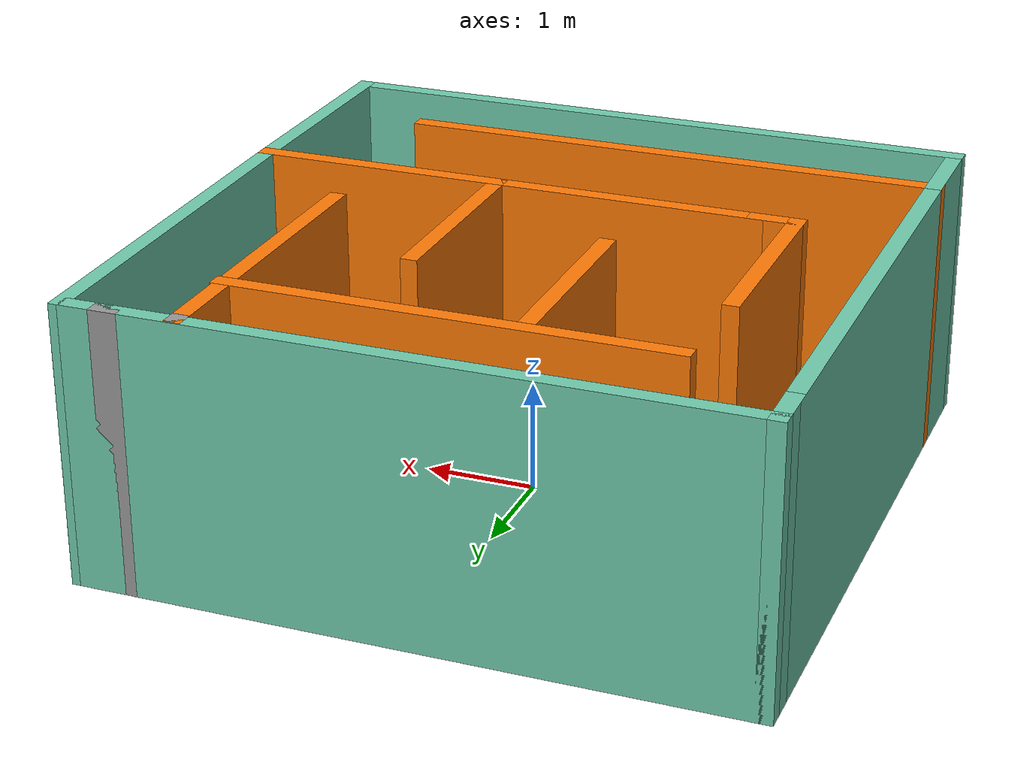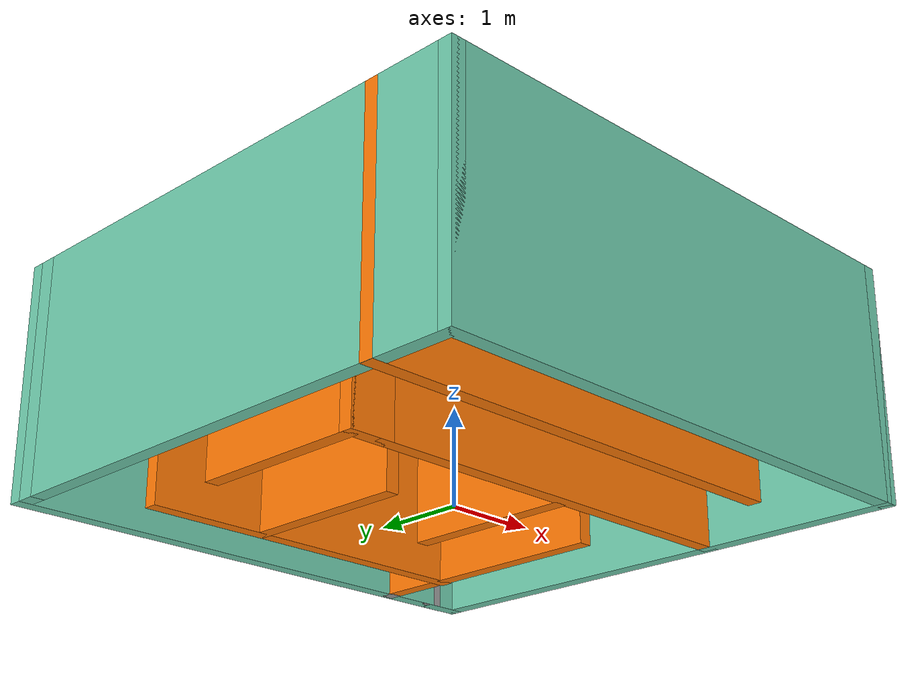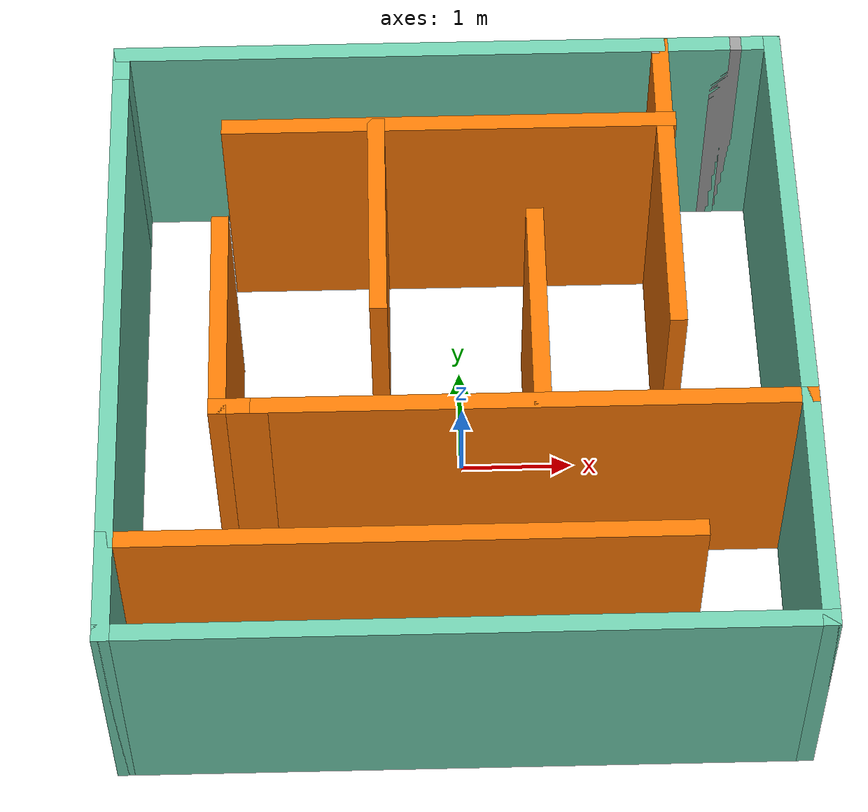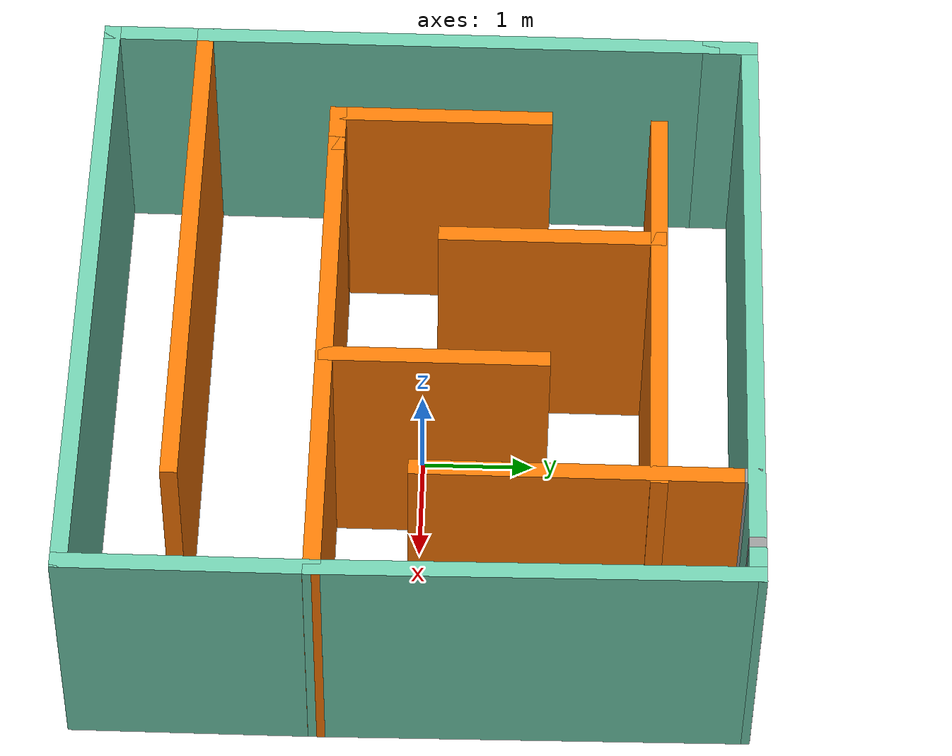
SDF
<?xml version='1.0'?>
<sdf version='1.7'>
  <model name='simple_map'>
    <pose>-0.034497 -0.029497 0 0 -0 0</pose>
    <link name='Wall_0'>
      <collision name='Wall_0_Collision'>
        <geometry>
          <box>
            <size>5 0.15 2.5</size>
          </box>
        </geometry>
        <pose>0 0 1.25 0 -0 0</pose>
      </collision>
      <visual name='Wall_0_Visual'>
        <pose>0 0 1.25 0 -0 0</pose>
        <geometry>
          <box>
            <size>5 0.15 2.5</size>
          </box>
        </geometry>
        <material>
          <script>
            <uri>file://media/materials/scripts/gazebo.material</uri>
            <name>Gazebo/Grey</name>
          </script>
          <ambient>0.996078 0.47451 0.0196078 1</ambient>
        </material>
        <meta>
          <layer>0</layer>
        </meta>
      </visual>
      <pose>-0.500503 -2.0505 0 0 -0 3.14159</pose>
    </link>
    <link name='Wall_10'>
      <collision name='Wall_10_Collision'>
        <geometry>
          <box>
            <size>0.5 0.15 2.5</size>
          </box>
        </geometry>
        <pose>0 0 1.25 0 -0 0</pose>
      </collision>
      <visual name='Wall_10_Visual'>
        <pose>0 0 1.25 0 -0 0</pose>
        <geometry>
          <box>
            <size>0.5 0.15 2.5</size>
          </box>
        </geometry>
        <material>
          <script>
            <uri>file://media/materials/scripts/gazebo.material</uri>
            <name>Gazebo/Grey</name>
          </script>
          <ambient>0.435294 0.796078 0.67451 1</ambient>
        </material>
        <meta>
          <layer>0</layer>
        </meta>
      </visual>
      <pose>-2.9255 2.7245 0 0 -0 1.5708</pose>
    </link>
    <link name='Wall_11'>
      <collision name='Wall_11_Collision'>
        <geometry>
          <box>
            <size>5.5 0.15 2.5</size>
          </box>
        </geometry>
        <pose>0 0 1.25 0 -0 0</pose>
      </collision>
      <visual name='Wall_11_Visual'>
        <pose>0 0 1.25 0 -0 0</pose>
        <geometry>
          <box>
            <size>5.5 0.15 2.5</size>
          </box>
        </geometry>
        <material>
          <script>
            <uri>file://media/materials/scripts/gazebo.material</uri>
            <name>Gazebo/Grey</name>
          </script>
          <ambient>0.435294 0.796078 0.67451 1</ambient>
        </material>
        <meta>
          <layer>0</layer>
        </meta>
      </visual>
      <pose>-0.250503 2.8995 0 0 -0 0</pose>
    </link>
    <link name='Wall_12'>
      <collision name='Wall_12_Collision'>
        <geometry>
          <box>
            <size>0.25 0.15 2.5</size>
          </box>
        </geometry>
        <pose>0 0 1.25 0 -0 0</pose>
      </collision>
      <visual name='Wall_12_Visual'>
        <pose>0 0 1.25 0 -0 0</pose>
        <geometry>
          <box>
            <size>0.25 0.15 2.5</size>
          </box>
        </geometry>
        <material>
          <script>
            <uri>file://media/materials/scripts/gazebo.material</uri>
            <name>Gazebo/Grey</name>
          </script>
          <ambient>1 1 1 1</ambient>
        </material>
        <meta>
          <layer>0</layer>
        </meta>
      </visual>
      <pose>2.4745 2.8995 0 0 -0 0</pose>
    </link>
    <link name='Wall_13'>
      <collision name='Wall_13_Collision'>
        <geometry>
          <box>
            <size>0.5 0.15 2.5</size>
          </box>
        </geometry>
        <pose>0 0 1.25 0 -0 0</pose>
      </collision>
      <visual name='Wall_13_Visual'>
        <pose>0 0 1.25 0 -0 0</pose>
        <geometry>
          <box>
            <size>0.5 0.15 2.5</size>
          </box>
        </geometry>
        <material>
          <script>
            <uri>file://media/materials/scripts/gazebo.material</uri>
            <name>Gazebo/Grey</name>
          </script>
          <ambient>0.435294 0.796078 0.67451 1</ambient>
        </material>
        <meta>
          <layer>0</layer>
        </meta>
      </visual>
      <pose>2.6995 2.8995 0 0 -0 0</pose>
    </link>
    <link name='Wall_14'>
      <collision name='Wall_14_Collision'>
        <geometry>
          <box>
            <size>3.85034 0.15 2.5</size>
          </box>
        </geometry>
        <pose>0 0 1.25 0 -0 0</pose>
      </collision>
      <visual name='Wall_14_Visual'>
        <pose>0 0 1.25 0 -0 0</pose>
        <geometry>
          <box>
            <size>3.85034 0.15 2.5</size>
          </box>
        </geometry>
        <material>
          <script>
            <uri>file://media/materials/scripts/gazebo.material</uri>
            <name>Gazebo/Grey</name>
          </script>
          <ambient>0.435294 0.796078 0.67451 1</ambient>
        </material>
        <meta>
          <layer>0</layer>
        </meta>
      </visual>
      <pose>2.8995 1.0495 0 0 -0 -1.55728</pose>
    </link>
    <link name='Wall_16'>
      <collision name='Wall_16_Collision'>
        <geometry>
          <box>
            <size>3 0.15 2.5</size>
          </box>
        </geometry>
        <pose>0 0 1.25 0 -0 0</pose>
      </collision>
      <visual name='Wall_16_Visual'>
        <pose>0 0 1.25 0 -0 0</pose>
        <geometry>
          <box>
            <size>3 0.15 2.5</size>
          </box>
        </geometry>
        <material>
          <script>
            <uri>file://media/materials/scripts/gazebo.material</uri>
            <name>Gazebo/Grey</name>
          </script>
          <ambient>0.996078 0.47451 0.0196078 1</ambient>
        </material>
        <meta>
          <layer>0</layer>
        </meta>
      </visual>
      <pose>1.87037 1.46337 0 0 -0 1.5708</pose>
    </link>
    <link name='Wall_17'>
      <collision name='Wall_17_Collision'>
        <geometry>
          <box>
            <size>0.15 0.15 2.5</size>
          </box>
        </geometry>
        <pose>0 0 1.25 0 -0 0</pose>
      </collision>
      <visual name='Wall_17_Visual'>
        <pose>0 0 1.25 0 -0 0</pose>
        <geometry>
          <box>
            <size>0.15 0.15 2.5</size>
          </box>
        </geometry>
        <material>
          <script>
            <uri>file://media/materials/scripts/gazebo.material</uri>
            <name>Gazebo/Grey</name>
          </script>
          <ambient>1 1 1 1</ambient>
        </material>
        <meta>
          <layer>0</layer>
        </meta>
      </visual>
      <pose>1.87037 2.87515 0 0 -0 0</pose>
    </link>
    <link name='Wall_19'>
      <collision name='Wall_19_Collision'>
        <geometry>
          <box>
            <size>4 0.15 2.5</size>
          </box>
        </geometry>
        <pose>0 0 1.25 0 -0 0</pose>
      </collision>
      <visual name='Wall_19_Visual'>
        <pose>0 0 1.25 0 -0 0</pose>
        <geometry>
          <box>
            <size>4 0.15 2.5</size>
          </box>
        </geometry>
        <material>
          <script>
            <uri>file://media/materials/scripts/gazebo.material</uri>
            <name>Gazebo/Grey</name>
          </script>
          <ambient>0.996078 0.47451 0.0196078 1</ambient>
        </material>
        <meta>
          <layer>0</layer>
        </meta>
      </visual>
      <pose>-0.02956 2.07926 0 0 -0 0</pose>
    </link>
    <link name='Wall_2'>
      <collision name='Wall_2_Collision'>
        <geometry>
          <box>
            <size>1 0.15 2.5</size>
          </box>
        </geometry>
        <pose>0 0 1.25 0 -0 0</pose>
      </collision>
      <visual name='Wall_2_Visual'>
        <pose>0 0 1.25 0 -0 0</pose>
        <geometry>
          <box>
            <size>1 0.15 2.5</size>
          </box>
        </geometry>
        <material>
          <script>
            <uri>file://media/materials/scripts/gazebo.material</uri>
            <name>Gazebo/Grey</name>
          </script>
          <ambient>0.435294 0.796078 0.67451 1</ambient>
        </material>
        <meta>
          <layer>0</layer>
        </meta>
      </visual>
      <pose>-2.9255 -2.4755 0 0 -0 -1.5708</pose>
    </link>
    <link name='Wall_21'>
      <collision name='Wall_21_Collision'>
        <geometry>
          <box>
            <size>2 0.15 2.5</size>
          </box>
        </geometry>
        <pose>0 0 1.25 0 -0 0</pose>
      </collision>
      <visual name='Wall_21_Visual'>
        <pose>0 0 1.25 0 -0 0</pose>
        <geometry>
          <box>
            <size>2 0.15 2.5</size>
          </box>
        </geometry>
        <material>
          <script>
            <uri>file://media/materials/scripts/gazebo.material</uri>
            <name>Gazebo/Grey</name>
          </script>
          <ambient>0.996078 0.47451 0.0196078 1</ambient>
        </material>
        <meta>
          <layer>0</layer>
        </meta>
      </visual>
      <pose>0.69044 0.14766 0 0 -0 1.5708</pose>
    </link>
    <link name='Wall_23'>
      <collision name='Wall_23_Collision'>
        <geometry>
          <box>
            <size>2 0.15 2.5</size>
          </box>
        </geometry>
        <pose>0 0 1.25 0 -0 0</pose>
      </collision>
      <visual name='Wall_23_Visual'>
        <pose>0 0 1.25 0 -0 0</pose>
        <geometry>
          <box>
            <size>2 0.15 2.5</size>
          </box>
        </geometry>
        <material>
          <script>
            <uri>file://media/materials/scripts/gazebo.material</uri>
            <name>Gazebo/Grey</name>
          </script>
          <ambient>0.996078 0.47451 0.0196078 1</ambient>
        </material>
        <meta>
          <layer>0</layer>
        </meta>
      </visual>
      <pose>-0.671735 1.14104 0 0 -0 -1.5708</pose>
    </link>
    <link name='Wall_3'>
      <collision name='Wall_3_Collision'>
        <geometry>
          <box>
            <size>6 0.15 2.5</size>
          </box>
        </geometry>
        <pose>0 0 1.25 0 -0 0</pose>
      </collision>
      <visual name='Wall_3_Visual'>
        <pose>0 0 1.25 0 -0 0</pose>
        <geometry>
          <box>
            <size>6 0.15 2.5</size>
          </box>
        </geometry>
        <material>
          <script>
            <uri>file://media/materials/scripts/gazebo.material</uri>
            <name>Gazebo/Grey</name>
          </script>
          <ambient>0.435294 0.796078 0.67451 1</ambient>
        </material>
        <meta>
          <layer>0</layer>
        </meta>
      </visual>
      <pose>-0.000503 -2.9005 0 0 -0 0</pose>
    </link>
    <link name='Wall_4'>
      <collision name='Wall_4_Collision'>
        <geometry>
          <box>
            <size>2.25 0.15 2.5</size>
          </box>
        </geometry>
        <pose>0 0 1.25 0 -0 0</pose>
      </collision>
      <visual name='Wall_4_Visual'>
        <pose>0 0 1.25 0 -0 0</pose>
        <geometry>
          <box>
            <size>2.25 0.15 2.5</size>
          </box>
        </geometry>
        <material>
          <script>
            <uri>file://media/materials/scripts/gazebo.material</uri>
            <name>Gazebo/Grey</name>
          </script>
          <ambient>0.435294 0.796078 0.67451 1</ambient>
        </material>
        <meta>
          <layer>0</layer>
        </meta>
      </visual>
      <pose>2.9245 -1.8505 0 0 -0 1.5708</pose>
    </link>
    <link name='Wall_5'>
      <collision name='Wall_5_Collision'>
        <geometry>
          <box>
            <size>4.75 0.15 2.5</size>
          </box>
        </geometry>
        <pose>0 0 1.25 0 -0 0</pose>
      </collision>
      <visual name='Wall_5_Visual'>
        <pose>0 0 1.25 0 -0 0</pose>
        <geometry>
          <box>
            <size>4.75 0.15 2.5</size>
          </box>
        </geometry>
        <material>
          <script>
            <uri>file://media/materials/scripts/gazebo.material</uri>
            <name>Gazebo/Grey</name>
          </script>
          <ambient>0.996078 0.47451 0.0196078 1</ambient>
        </material>
        <meta>
          <layer>0</layer>
        </meta>
      </visual>
      <pose>0.624497 -0.800503 0 0 -0 3.14159</pose>
    </link>
    <link name='Wall_6'>
      <collision name='Wall_6_Collision'>
        <geometry>
          <box>
            <size>0.5 0.15 2.5</size>
          </box>
        </geometry>
        <pose>0 0 1.25 0 -0 0</pose>
      </collision>
      <visual name='Wall_6_Visual'>
        <pose>0 0 1.25 0 -0 0</pose>
        <geometry>
          <box>
            <size>0.5 0.15 2.5</size>
          </box>
        </geometry>
        <material>
          <script>
            <uri>file://media/materials/scripts/gazebo.material</uri>
            <name>Gazebo/Grey</name>
          </script>
          <ambient>0.996078 0.47451 0.0196078 1</ambient>
        </material>
        <meta>
          <layer>0</layer>
        </meta>
      </visual>
      <pose>-1.8505 -0.800503 0 0 -0 3.14159</pose>
    </link>
    <link name='Wall_7'>
      <collision name='Wall_7_Collision'>
        <geometry>
          <box>
            <size>2 0.15 2.5</size>
          </box>
        </geometry>
        <pose>0 0 1.25 0 -0 0</pose>
      </collision>
      <visual name='Wall_7_Visual'>
        <pose>0 0 1.25 0 -0 0</pose>
        <geometry>
          <box>
            <size>2 0.15 2.5</size>
          </box>
        </geometry>
        <material>
          <script>
            <uri>file://media/materials/scripts/gazebo.material</uri>
            <name>Gazebo/Grey</name>
          </script>
          <ambient>0.996078 0.47451 0.0196078 1</ambient>
        </material>
        <meta>
          <layer>0</layer>
        </meta>
      </visual>
      <pose>-2.0255 0.124497 0 0 -0 1.5708</pose>
    </link>
    <link name='Wall_9'>
      <collision name='Wall_9_Collision'>
        <geometry>
          <box>
            <size>4.75 0.15 2.5</size>
          </box>
        </geometry>
        <pose>0 0 1.25 0 -0 0</pose>
      </collision>
      <visual name='Wall_9_Visual'>
        <pose>0 0 1.25 0 -0 0</pose>
        <geometry>
          <box>
            <size>4.75 0.15 2.5</size>
          </box>
        </geometry>
        <material>
          <script>
            <uri>file://media/materials/scripts/gazebo.material</uri>
            <name>Gazebo/Grey</name>
          </script>
          <ambient>0.435294 0.796078 0.67451 1</ambient>
        </material>
        <meta>
          <layer>0</layer>
        </meta>
      </visual>
      <pose>-2.9255 0.249497 0 0 -0 1.5708</pose>
    </link>
    <static>1</static>
  </model>
</sdf>
